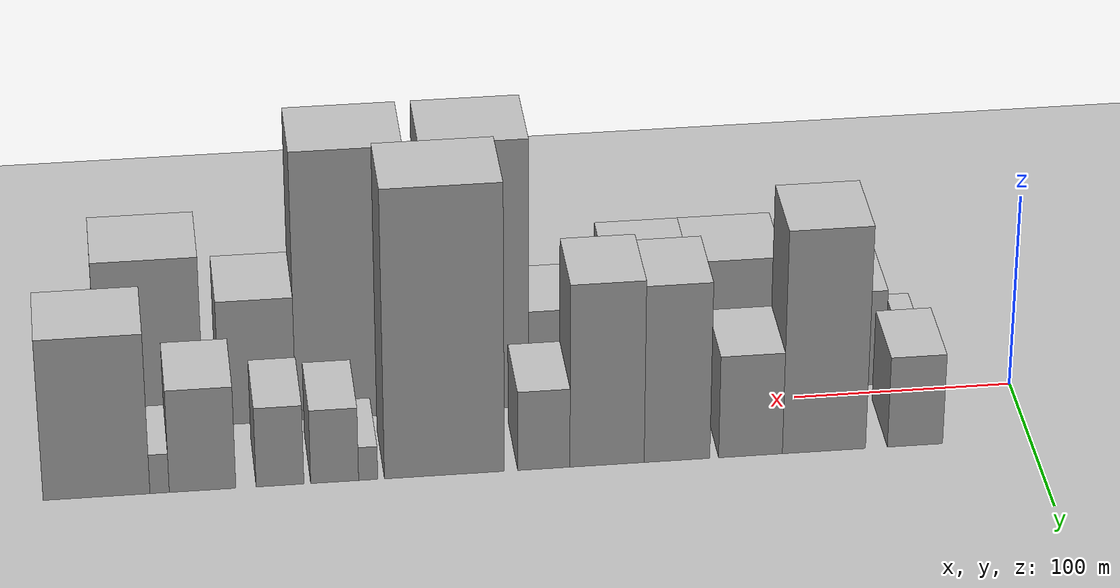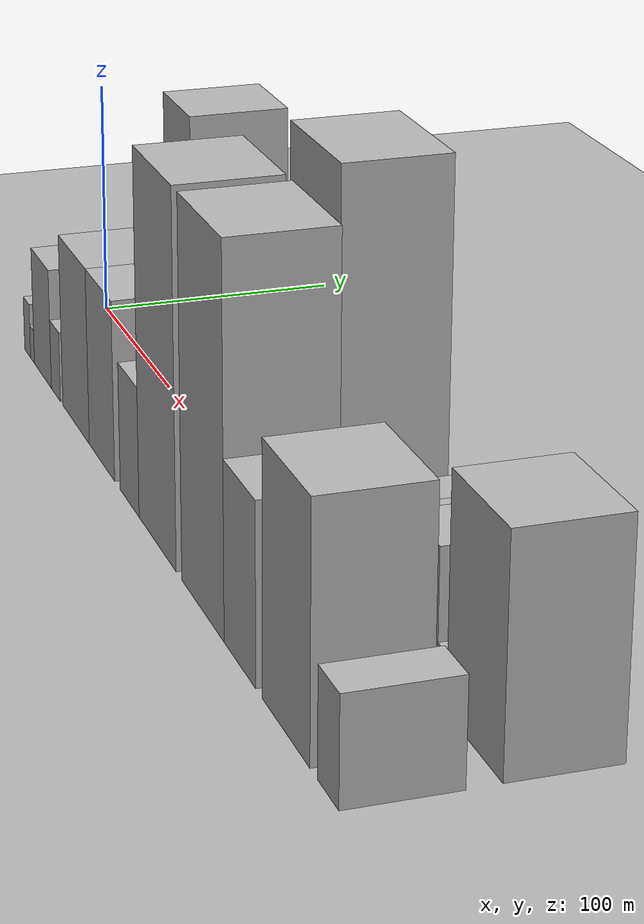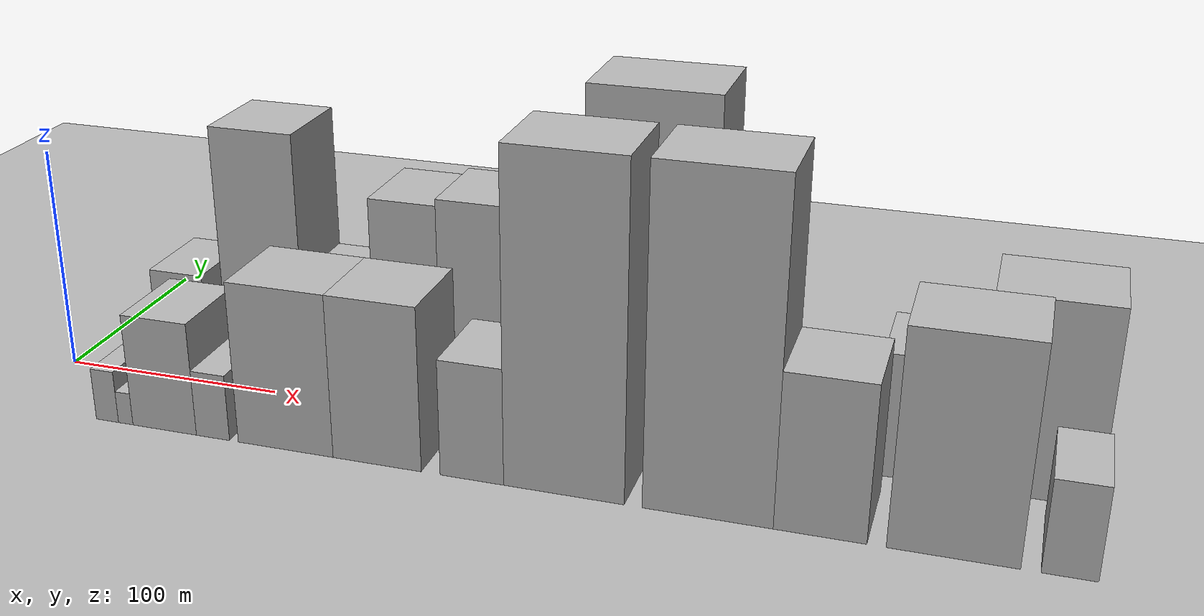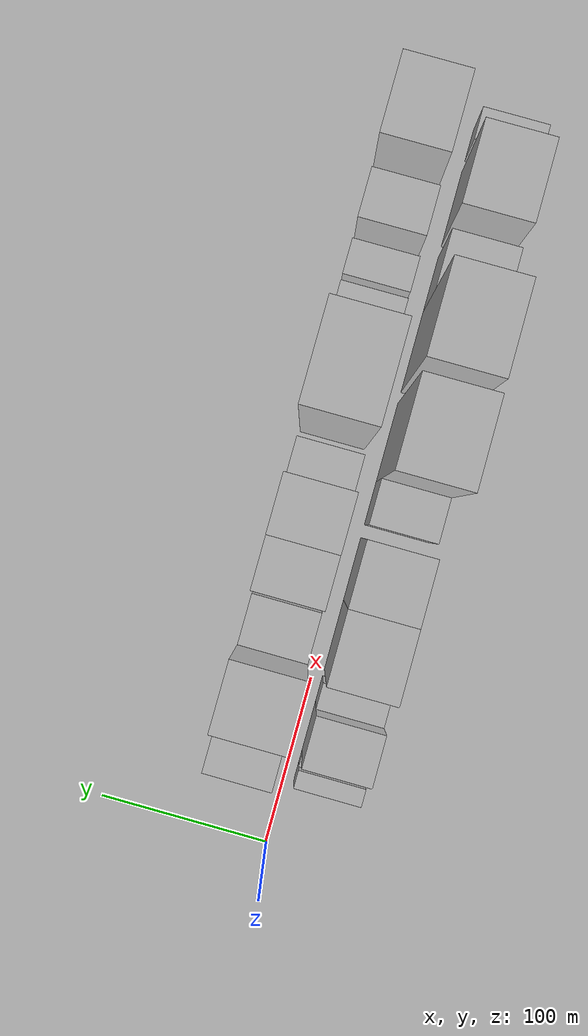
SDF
<?xml version="1.0" encoding="utf-8"?>

<sdf version="1.6">

   <world name="default">

      <gui fullscreen="0">

         <camera name="user_camera">

            <pose>-15 0 4.57585 0 0 0</pose>

            <view_controller>orbit</view_controller>

         </camera>

      </gui>

      <scene>

         <sky>

           <clouds>

             <speed>12</speed>

           </clouds>

         </sky>

         <ambient>0.4 0.4 0.4 1</ambient>

         <background>0.7 0.7 0.7 1</background>

         <shadows>1</shadows>

      </scene>

      <gravity>0 0 -9.8066</gravity>

      <magnetic_field>6e-06 2.3e-05 -4.2e-05</magnetic_field>

      <physics default="0" name="default_physics" type="ode">

         <ode>

            <solver>

               <type>quick</type>

               <iters>10</iters>

               <sor>1.0</sor>

               <use_dynamic_moi_rescaling>0</use_dynamic_moi_rescaling>

            </solver>

            <constraints>

               <cfm>0</cfm>

               <erp>0.2</erp>

               <contact_max_correcting_vel>100</contact_max_correcting_vel>

               <contact_surface_layer>0.001</contact_surface_layer>

            </constraints>

         </ode>

         <max_step_size>0.004</max_step_size>

         <real_time_factor>1</real_time_factor>

         <real_time_update_rate>250</real_time_update_rate>

      </physics>

      <light name="sun" type="directional">

         <cast_shadows>1</cast_shadows>

         <pose>0 0 10 0 0 0</pose>

         <diffuse>0.8 0.8 0.8 1</diffuse>

         <specular>0.2 0.2 0.2 1</specular>

         <attenuation>

            <range>1000</range>

            <constant>0.9</constant>

            <linear>0.01</linear>

            <quadratic>0.001</quadratic>

         </attenuation>

         <direction>-0.5 0.1 -0.9</direction>

      </light>

      <include>

         <name>ground_plane_1</name>

         <uri>model://HANNAS_ground_plane</uri>

         <pose>0 0 0  0 0 0</pose>

      </include>

      <include>

         <name>ground_plane_2</name>

         <uri>model://HANNAS_ground_plane</uri>

         <pose>100 0 0  0 0 0</pose>

      </include>

      <model name="building_1">

         <static>1</static>

         <pose frame="">52.6195 26.0000 0 0.000000 0.000000 1.570796</pose>

         <link name="link">

            <pose frame="">0 0 24.00 0 0 0</pose>

            <collision name="collision">

               <geometry>

                  <box>

                     <size>40.0000 25.2391 48.0000</size>

                  </box>

               </geometry>

               <max_contacts>10</max_contacts>

               <surface>

                  <contact>

                     <ode/>

                  </contact>

                  <bounce/>

                  <friction>

                     <torsional>

                        <ode/>

                     </torsional>

                     <ode/>

                  </friction>

               </surface>

            </collision>

            <visual name="visual">

               <cast_shadows>0</cast_shadows>

               <geometry>

                  <box>

                     <size>40.0000 25.2391 48.0000</size>

                  </box>

               </geometry>

               <material>

                  <script>

                     <uri>model://HANNAS_wall/materials/scripts</uri>

                     <uri>model://HANNAS_wall/materials/textures</uri>

                     <name>vrc/HANNAS_wall</name>

                  </script>

               </material>

            </visual>

            <self_collide>0</self_collide>

            <enable_wind>0</enable_wind>

            <kinematic>0</kinematic>

         </link>

      </model>

      <model name="building_2">

         <static>1</static>

         <pose frame="">94.1883 26.0000 0 0.000000 0.000000 1.570796</pose>

         <link name="link">

            <pose frame="">0 0 58.50 0 0 0</pose>

            <collision name="collision">

               <geometry>

                  <box>

                     <size>40.0000 37.8985 117.0000</size>

                  </box>

               </geometry>

               <max_contacts>10</max_contacts>

               <surface>

                  <contact>

                     <ode/>

                  </contact>

                  <bounce/>

                  <friction>

                     <torsional>

                        <ode/>

                     </torsional>

                     <ode/>

                  </friction>

               </surface>

            </collision>

            <visual name="visual">

               <cast_shadows>0</cast_shadows>

               <geometry>

                  <box>

                     <size>40.0000 37.8985 117.0000</size>

                  </box>

               </geometry>

               <material>

                  <script>

                     <uri>model://HANNAS_wall/materials/scripts</uri>

                     <uri>model://HANNAS_wall/materials/textures</uri>

                     <name>vrc/HANNAS_wall</name>

                  </script>

               </material>

            </visual>

            <self_collide>0</self_collide>

            <enable_wind>0</enable_wind>

            <kinematic>0</kinematic>

         </link>

      </model>

      <model name="building_3">

         <static>1</static>

         <pose frame="">127.6139 26.0000 0 0.000000 0.000000 1.570796</pose>

         <link name="link">

            <pose frame="">0 0 27.00 0 0 0</pose>

            <collision name="collision">

               <geometry>

                  <box>

                     <size>40.0000 28.9527 54.0000</size>

                  </box>

               </geometry>

               <max_contacts>10</max_contacts>

               <surface>

                  <contact>

                     <ode/>

                  </contact>

                  <bounce/>

                  <friction>

                     <torsional>

                        <ode/>

                     </torsional>

                     <ode/>

                  </friction>

               </surface>

            </collision>

            <visual name="visual">

               <cast_shadows>0</cast_shadows>

               <geometry>

                  <box>

                     <size>40.0000 28.9527 54.0000</size>

                  </box>

               </geometry>

               <material>

                  <script>

                     <uri>model://HANNAS_wall/materials/scripts</uri>

                     <uri>model://HANNAS_wall/materials/textures</uri>

                     <name>vrc/HANNAS_wall</name>

                  </script>

               </material>

            </visual>

            <self_collide>0</self_collide>

            <enable_wind>0</enable_wind>

            <kinematic>0</kinematic>

         </link>

      </model>

      <model name="building_4">

         <static>1</static>

         <pose frame="">160.9528 26.0000 0 0.000000 0.000000 1.570796</pose>

         <link name="link">

            <pose frame="">0 0 46.50 0 0 0</pose>

            <collision name="collision">

               <geometry>

                  <box>

                     <size>40.0000 29.7250 93.0000</size>

                  </box>

               </geometry>

               <max_contacts>10</max_contacts>

               <surface>

                  <contact>

                     <ode/>

                  </contact>

                  <bounce/>

                  <friction>

                     <torsional>

                        <ode/>

                     </torsional>

                     <ode/>

                  </friction>

               </surface>

            </collision>

            <visual name="visual">

               <cast_shadows>0</cast_shadows>

               <geometry>

                  <box>

                     <size>40.0000 29.7250 93.0000</size>

                  </box>

               </geometry>

               <material>

                  <script>

                     <uri>model://HANNAS_wall/materials/scripts</uri>

                     <uri>model://HANNAS_wall/materials/textures</uri>

                     <name>vrc/HANNAS_wall</name>

                  </script>

               </material>

            </visual>

            <self_collide>0</self_collide>

            <enable_wind>0</enable_wind>

            <kinematic>0</kinematic>

         </link>

      </model>

      <model name="building_5">

         <static>1</static>

         <pose frame="">192.5927 26.0000 0 0.000000 0.000000 1.570796</pose>

         <link name="link">

            <pose frame="">0 0 48.00 0 0 0</pose>

            <collision name="collision">

               <geometry>

                  <box>

                     <size>40.0000 33.5550 96.0000</size>

                  </box>

               </geometry>

               <max_contacts>10</max_contacts>

               <surface>

                  <contact>

                     <ode/>

                  </contact>

                  <bounce/>

                  <friction>

                     <torsional>

                        <ode/>

                     </torsional>

                     <ode/>

                  </friction>

               </surface>

            </collision>

            <visual name="visual">

               <cast_shadows>0</cast_shadows>

               <geometry>

                  <box>

                     <size>40.0000 33.5550 96.0000</size>

                  </box>

               </geometry>

               <material>

                  <script>

                     <uri>model://HANNAS_wall/materials/scripts</uri>

                     <uri>model://HANNAS_wall/materials/textures</uri>

                     <name>vrc/HANNAS_wall</name>

                  </script>

               </material>

            </visual>

            <self_collide>0</self_collide>

            <enable_wind>0</enable_wind>

            <kinematic>0</kinematic>

         </link>

      </model>

      <model name="building_6">

         <static>1</static>

         <pose frame="">221.1236 26.0000 0 0.000000 0.000000 1.570796</pose>

         <link name="link">

            <pose frame="">0 0 21.00 0 0 0</pose>

            <collision name="collision">

               <geometry>

                  <box>

                     <size>40.0000 23.5068 42.0000</size>

                  </box>

               </geometry>

               <max_contacts>10</max_contacts>

               <surface>

                  <contact>

                     <ode/>

                  </contact>

                  <bounce/>

                  <friction>

                     <torsional>

                        <ode/>

                     </torsional>

                     <ode/>

                  </friction>

               </surface>

            </collision>

            <visual name="visual">

               <cast_shadows>0</cast_shadows>

               <geometry>

                  <box>

                     <size>40.0000 23.5068 42.0000</size>

                  </box>

               </geometry>

               <material>

                  <script>

                     <uri>model://HANNAS_wall/materials/scripts</uri>

                     <uri>model://HANNAS_wall/materials/textures</uri>

                     <name>vrc/HANNAS_wall</name>

                  </script>

               </material>

            </visual>

            <self_collide>0</self_collide>

            <enable_wind>0</enable_wind>

            <kinematic>0</kinematic>

         </link>

      </model>

      <model name="building_7">

         <static>1</static>

         <pose frame="">265.7834 26.0000 0 0.000000 0.000000 1.570796</pose>

         <link name="link">

            <pose frame="">0 0 75.00 0 0 0</pose>

            <collision name="collision">

               <geometry>

                  <box>

                     <size>40.0000 53.8128 150.0000</size>

                  </box>

               </geometry>

               <max_contacts>10</max_contacts>

               <surface>

                  <contact>

                     <ode/>

                  </contact>

                  <bounce/>

                  <friction>

                     <torsional>

                        <ode/>

                     </torsional>

                     <ode/>

                  </friction>

               </surface>

            </collision>

            <visual name="visual">

               <cast_shadows>0</cast_shadows>

               <geometry>

                  <box>

                     <size>40.0000 53.8128 150.0000</size>

                  </box>

               </geometry>

               <material>

                  <script>

                     <uri>model://HANNAS_wall/materials/scripts</uri>

                     <uri>model://HANNAS_wall/materials/textures</uri>

                     <name>vrc/HANNAS_wall</name>

                  </script>

               </material>

            </visual>

            <self_collide>0</self_collide>

            <enable_wind>0</enable_wind>

            <kinematic>0</kinematic>

         </link>

      </model>

      <model name="building_8">

         <static>1</static>

         <pose frame="">299.9729 26.0000 0 0.000000 0.000000 1.570796</pose>

         <link name="link">

            <pose frame="">0 0 9.00 0 0 0</pose>

            <collision name="collision">

               <geometry>

                  <box>

                     <size>40.0000 8.5662 18.0000</size>

                  </box>

               </geometry>

               <max_contacts>10</max_contacts>

               <surface>

                  <contact>

                     <ode/>

                  </contact>

                  <bounce/>

                  <friction>

                     <torsional>

                        <ode/>

                     </torsional>

                     <ode/>

                  </friction>

               </surface>

            </collision>

            <visual name="visual">

               <cast_shadows>0</cast_shadows>

               <geometry>

                  <box>

                     <size>40.0000 8.5662 18.0000</size>

                  </box>

               </geometry>

               <material>

                  <script>

                     <uri>model://HANNAS_wall/materials/scripts</uri>

                     <uri>model://HANNAS_wall/materials/textures</uri>

                     <name>vrc/HANNAS_wall</name>

                  </script>

               </material>

            </visual>

            <self_collide>0</self_collide>

            <enable_wind>0</enable_wind>

            <kinematic>0</kinematic>

         </link>

      </model>

      <model name="building_9">

         <static>1</static>

         <pose frame="">314.9580 26.0000 0 0.000000 0.000000 1.570796</pose>

         <link name="link">

            <pose frame="">0 0 19.50 0 0 0</pose>

            <collision name="collision">

               <geometry>

                  <box>

                     <size>40.0000 21.4040 39.0000</size>

                  </box>

               </geometry>

               <max_contacts>10</max_contacts>

               <surface>

                  <contact>

                     <ode/>

                  </contact>

                  <bounce/>

                  <friction>

                     <torsional>

                        <ode/>

                     </torsional>

                     <ode/>

                  </friction>

               </surface>

            </collision>

            <visual name="visual">

               <cast_shadows>0</cast_shadows>

               <geometry>

                  <box>

                     <size>40.0000 21.4040 39.0000</size>

                  </box>

               </geometry>

               <material>

                  <script>

                     <uri>model://HANNAS_wall/materials/scripts</uri>

                     <uri>model://HANNAS_wall/materials/textures</uri>

                     <name>vrc/HANNAS_wall</name>

                  </script>

               </material>

            </visual>

            <self_collide>0</self_collide>

            <enable_wind>0</enable_wind>

            <kinematic>0</kinematic>

         </link>

      </model>

      <model name="building_10">

         <static>1</static>

         <pose frame="">339.3131 26.0000 0 0.000000 0.000000 1.570796</pose>

         <link name="link">

            <pose frame="">0 0 21.00 0 0 0</pose>

            <collision name="collision">

               <geometry>

                  <box>

                     <size>40.0000 21.3061 42.0000</size>

                  </box>

               </geometry>

               <max_contacts>10</max_contacts>

               <surface>

                  <contact>

                     <ode/>

                  </contact>

                  <bounce/>

                  <friction>

                     <torsional>

                        <ode/>

                     </torsional>

                     <ode/>

                  </friction>

               </surface>

            </collision>

            <visual name="visual">

               <cast_shadows>0</cast_shadows>

               <geometry>

                  <box>

                     <size>40.0000 21.3061 42.0000</size>

                  </box>

               </geometry>

               <material>

                  <script>

                     <uri>model://HANNAS_wall/materials/scripts</uri>

                     <uri>model://HANNAS_wall/materials/textures</uri>

                     <name>vrc/HANNAS_wall</name>

                  </script>

               </material>

            </visual>

            <self_collide>0</self_collide>

            <enable_wind>0</enable_wind>

            <kinematic>0</kinematic>

         </link>

      </model>

      <model name="building_11">

         <static>1</static>

         <pose frame="">373.7644 26.0000 0 0.000000 0.000000 1.570796</pose>

         <link name="link">

            <pose frame="">0 0 27.00 0 0 0</pose>

            <collision name="collision">

               <geometry>

                  <box>

                     <size>40.0000 29.5966 54.0000</size>

                  </box>

               </geometry>

               <max_contacts>10</max_contacts>

               <surface>

                  <contact>

                     <ode/>

                  </contact>

                  <bounce/>

                  <friction>

                     <torsional>

                        <ode/>

                     </torsional>

                     <ode/>

                  </friction>

               </surface>

            </collision>

            <visual name="visual">

               <cast_shadows>0</cast_shadows>

               <geometry>

                  <box>

                     <size>40.0000 29.5966 54.0000</size>

                  </box>

               </geometry>

               <material>

                  <script>

                     <uri>model://HANNAS_wall/materials/scripts</uri>

                     <uri>model://HANNAS_wall/materials/textures</uri>

                     <name>vrc/HANNAS_wall</name>

                  </script>

               </material>

            </visual>

            <self_collide>0</self_collide>

            <enable_wind>0</enable_wind>

            <kinematic>0</kinematic>

         </link>

      </model>

      <model name="building_12">

         <static>1</static>

         <pose frame="">392.8531 26.0000 0 0.000000 0.000000 1.570796</pose>

         <link name="link">

            <pose frame="">0 0 10.50 0 0 0</pose>

            <collision name="collision">

               <geometry>

                  <box>

                     <size>40.0000 8.5809 21.0000</size>

                  </box>

               </geometry>

               <max_contacts>10</max_contacts>

               <surface>

                  <contact>

                     <ode/>

                  </contact>

                  <bounce/>

                  <friction>

                     <torsional>

                        <ode/>

                     </torsional>

                     <ode/>

                  </friction>

               </surface>

            </collision>

            <visual name="visual">

               <cast_shadows>0</cast_shadows>

               <geometry>

                  <box>

                     <size>40.0000 8.5809 21.0000</size>

                  </box>

               </geometry>

               <material>

                  <script>

                     <uri>model://HANNAS_wall/materials/scripts</uri>

                     <uri>model://HANNAS_wall/materials/textures</uri>

                     <name>vrc/HANNAS_wall</name>

                  </script>

               </material>

            </visual>

            <self_collide>0</self_collide>

            <enable_wind>0</enable_wind>

            <kinematic>0</kinematic>

         </link>

      </model>

      <model name="building_13">

         <static>1</static>

         <pose frame="">420.7627 26.0000 0 0.000000 0.000000 1.570796</pose>

         <link name="link">

            <pose frame="">0 0 42.00 0 0 0</pose>

            <collision name="collision">

               <geometry>

                  <box>

                     <size>40.0000 47.2383 84.0000</size>

                  </box>

               </geometry>

               <max_contacts>10</max_contacts>

               <surface>

                  <contact>

                     <ode/>

                  </contact>

                  <bounce/>

                  <friction>

                     <torsional>

                        <ode/>

                     </torsional>

                     <ode/>

                  </friction>

               </surface>

            </collision>

            <visual name="visual">

               <cast_shadows>0</cast_shadows>

               <geometry>

                  <box>

                     <size>40.0000 47.2383 84.0000</size>

                  </box>

               </geometry>

               <material>

                  <script>

                     <uri>model://HANNAS_wall/materials/scripts</uri>

                     <uri>model://HANNAS_wall/materials/textures</uri>

                     <name>vrc/HANNAS_wall</name>

                  </script>

               </material>

            </visual>

            <self_collide>0</self_collide>

            <enable_wind>0</enable_wind>

            <kinematic>0</kinematic>

         </link>

      </model>

      <model name="building_14">

         <static>1</static>

         <pose frame="">45.2991 -26.0000 0 0.000000 0.000000 1.570796</pose>

         <link name="link">

            <pose frame="">0 0 12.00 0 0 0</pose>

            <collision name="collision">

               <geometry>

                  <box>

                     <size>40.0000 10.5982 24.0000</size>

                  </box>

               </geometry>

               <max_contacts>10</max_contacts>

               <surface>

                  <contact>

                     <ode/>

                  </contact>

                  <bounce/>

                  <friction>

                     <torsional>

                        <ode/>

                     </torsional>

                     <ode/>

                  </friction>

               </surface>

            </collision>

            <visual name="visual">

               <cast_shadows>0</cast_shadows>

               <geometry>

                  <box>

                     <size>40.0000 10.5982 24.0000</size>

                  </box>

               </geometry>

               <material>

                  <script>

                     <uri>model://HANNAS_wall/materials/scripts</uri>

                     <uri>model://HANNAS_wall/materials/textures</uri>

                     <name>vrc/HANNAS_wall</name>

                  </script>

               </material>

            </visual>

            <self_collide>0</self_collide>

            <enable_wind>0</enable_wind>

            <kinematic>0</kinematic>

         </link>

      </model>

      <model name="building_15">

         <static>1</static>

         <pose frame="">54.0402 -26.0000 0 0.000000 0.000000 1.570796</pose>

         <link name="link">

            <pose frame="">0 0 7.50 0 0 0</pose>

            <collision name="collision">

               <geometry>

                  <box>

                     <size>40.0000 6.8842 15.0000</size>

                  </box>

               </geometry>

               <max_contacts>10</max_contacts>

               <surface>

                  <contact>

                     <ode/>

                  </contact>

                  <bounce/>

                  <friction>

                     <torsional>

                        <ode/>

                     </torsional>

                     <ode/>

                  </friction>

               </surface>

            </collision>

            <visual name="visual">

               <cast_shadows>0</cast_shadows>

               <geometry>

                  <box>

                     <size>40.0000 6.8842 15.0000</size>

                  </box>

               </geometry>

               <material>

                  <script>

                     <uri>model://HANNAS_wall/materials/scripts</uri>

                     <uri>model://HANNAS_wall/materials/textures</uri>

                     <name>vrc/HANNAS_wall</name>

                  </script>

               </material>

            </visual>

            <self_collide>0</self_collide>

            <enable_wind>0</enable_wind>

            <kinematic>0</kinematic>

         </link>

      </model>

      <model name="building_16">

         <static>1</static>

         <pose frame="">72.4030 -26.0000 0 0.000000 0.000000 1.570796</pose>

         <link name="link">

            <pose frame="">0 0 25.50 0 0 0</pose>

            <collision name="collision">

               <geometry>

                  <box>

                     <size>40.0000 29.8413 51.0000</size>

                  </box>

               </geometry>

               <max_contacts>10</max_contacts>

               <surface>

                  <contact>

                     <ode/>

                  </contact>

                  <bounce/>

                  <friction>

                     <torsional>

                        <ode/>

                     </torsional>

                     <ode/>

                  </friction>

               </surface>

            </collision>

            <visual name="visual">

               <cast_shadows>0</cast_shadows>

               <geometry>

                  <box>

                     <size>40.0000 29.8413 51.0000</size>

                  </box>

               </geometry>

               <material>

                  <script>

                     <uri>model://HANNAS_wall/materials/scripts</uri>

                     <uri>model://HANNAS_wall/materials/textures</uri>

                     <name>vrc/HANNAS_wall</name>

                  </script>

               </material>

            </visual>

            <self_collide>0</self_collide>

            <enable_wind>0</enable_wind>

            <kinematic>0</kinematic>

         </link>

      </model>

      <model name="building_17">

         <static>1</static>

         <pose frame="">94.9716 -26.0000 0 0.000000 0.000000 1.570796</pose>

         <link name="link">

            <pose frame="">0 0 15.00 0 0 0</pose>

            <collision name="collision">

               <geometry>

                  <box>

                     <size>40.0000 15.2959 30.0000</size>

                  </box>

               </geometry>

               <max_contacts>10</max_contacts>

               <surface>

                  <contact>

                     <ode/>

                  </contact>

                  <bounce/>

                  <friction>

                     <torsional>

                        <ode/>

                     </torsional>

                     <ode/>

                  </friction>

               </surface>

            </collision>

            <visual name="visual">

               <cast_shadows>0</cast_shadows>

               <geometry>

                  <box>

                     <size>40.0000 15.2959 30.0000</size>

                  </box>

               </geometry>

               <material>

                  <script>

                     <uri>model://HANNAS_wall/materials/scripts</uri>

                     <uri>model://HANNAS_wall/materials/textures</uri>

                     <name>vrc/HANNAS_wall</name>

                  </script>

               </material>

            </visual>

            <self_collide>0</self_collide>

            <enable_wind>0</enable_wind>

            <kinematic>0</kinematic>

         </link>

      </model>

      <model name="building_18">

         <static>1</static>

         <pose frame="">127.9093 -26.0000 0 0.000000 0.000000 1.570796</pose>

         <link name="link">

            <pose frame="">0 0 36.00 0 0 0</pose>

            <collision name="collision">

               <geometry>

                  <box>

                     <size>40.0000 42.5796 72.0000</size>

                  </box>

               </geometry>

               <max_contacts>10</max_contacts>

               <surface>

                  <contact>

                     <ode/>

                  </contact>

                  <bounce/>

                  <friction>

                     <torsional>

                        <ode/>

                     </torsional>

                     <ode/>

                  </friction>

               </surface>

            </collision>

            <visual name="visual">

               <cast_shadows>0</cast_shadows>

               <geometry>

                  <box>

                     <size>40.0000 42.5796 72.0000</size>

                  </box>

               </geometry>

               <material>

                  <script>

                     <uri>model://HANNAS_wall/materials/scripts</uri>

                     <uri>model://HANNAS_wall/materials/textures</uri>

                     <name>vrc/HANNAS_wall</name>

                  </script>

               </material>

            </visual>

            <self_collide>0</self_collide>

            <enable_wind>0</enable_wind>

            <kinematic>0</kinematic>

         </link>

      </model>

      <model name="building_19">

         <static>1</static>

         <pose frame="">168.3287 -26.0000 0 0.000000 0.000000 1.570796</pose>

         <link name="link">

            <pose frame="">0 0 36.00 0 0 0</pose>

            <collision name="collision">

               <geometry>

                  <box>

                     <size>40.0000 38.2591 72.0000</size>

                  </box>

               </geometry>

               <max_contacts>10</max_contacts>

               <surface>

                  <contact>

                     <ode/>

                  </contact>

                  <bounce/>

                  <friction>

                     <torsional>

                        <ode/>

                     </torsional>

                     <ode/>

                  </friction>

               </surface>

            </collision>

            <visual name="visual">

               <cast_shadows>0</cast_shadows>

               <geometry>

                  <box>

                     <size>40.0000 38.2591 72.0000</size>

                  </box>

               </geometry>

               <material>

                  <script>

                     <uri>model://HANNAS_wall/materials/scripts</uri>

                     <uri>model://HANNAS_wall/materials/textures</uri>

                     <name>vrc/HANNAS_wall</name>

                  </script>

               </material>

            </visual>

            <self_collide>0</self_collide>

            <enable_wind>0</enable_wind>

            <kinematic>0</kinematic>

         </link>

      </model>

      <model name="building_20">

         <static>1</static>

         <pose frame="">208.7578 -26.0000 0 0.000000 0.000000 1.570796</pose>

         <link name="link">

            <pose frame="">0 0 25.50 0 0 0</pose>

            <collision name="collision">

               <geometry>

                  <box>

                     <size>40.0000 26.5992 51.0000</size>

                  </box>

               </geometry>

               <max_contacts>10</max_contacts>

               <surface>

                  <contact>

                     <ode/>

                  </contact>

                  <bounce/>

                  <friction>

                     <torsional>

                        <ode/>

                     </torsional>

                     <ode/>

                  </friction>

               </surface>

            </collision>

            <visual name="visual">

               <cast_shadows>0</cast_shadows>

               <geometry>

                  <box>

                     <size>40.0000 26.5992 51.0000</size>

                  </box>

               </geometry>

               <material>

                  <script>

                     <uri>model://HANNAS_wall/materials/scripts</uri>

                     <uri>model://HANNAS_wall/materials/textures</uri>

                     <name>vrc/HANNAS_wall</name>

                  </script>

               </material>

            </visual>

            <self_collide>0</self_collide>

            <enable_wind>0</enable_wind>

            <kinematic>0</kinematic>

         </link>

      </model>

      <model name="building_21">

         <static>1</static>

         <pose frame="">246.5236 -26.0000 0 0.000000 0.000000 1.570796</pose>

         <link name="link">

            <pose frame="">0 0 70.50 0 0 0</pose>

            <collision name="collision">

               <geometry>

                  <box>

                     <size>40.0000 48.9324 141.0000</size>

                  </box>

               </geometry>

               <max_contacts>10</max_contacts>

               <surface>

                  <contact>

                     <ode/>

                  </contact>

                  <bounce/>

                  <friction>

                     <torsional>

                        <ode/>

                     </torsional>

                     <ode/>

                  </friction>

               </surface>

            </collision>

            <visual name="visual">

               <cast_shadows>0</cast_shadows>

               <geometry>

                  <box>

                     <size>40.0000 48.9324 141.0000</size>

                  </box>

               </geometry>

               <material>

                  <script>

                     <uri>model://HANNAS_wall/materials/scripts</uri>

                     <uri>model://HANNAS_wall/materials/textures</uri>

                     <name>vrc/HANNAS_wall</name>

                  </script>

               </material>

            </visual>

            <self_collide>0</self_collide>

            <enable_wind>0</enable_wind>

            <kinematic>0</kinematic>

         </link>

      </model>

      <model name="building_22">

         <static>1</static>

         <pose frame="">303.2490 -26.0000 0 0.000000 0.000000 1.570796</pose>

         <link name="link">

            <pose frame="">0 0 70.50 0 0 0</pose>

            <collision name="collision">

               <geometry>

                  <box>

                     <size>40.0000 50.5183 141.0000</size>

                  </box>

               </geometry>

               <max_contacts>10</max_contacts>

               <surface>

                  <contact>

                     <ode/>

                  </contact>

                  <bounce/>

                  <friction>

                     <torsional>

                        <ode/>

                     </torsional>

                     <ode/>

                  </friction>

               </surface>

            </collision>

            <visual name="visual">

               <cast_shadows>0</cast_shadows>

               <geometry>

                  <box>

                     <size>40.0000 50.5183 141.0000</size>

                  </box>

               </geometry>

               <material>

                  <script>

                     <uri>model://HANNAS_wall/materials/scripts</uri>

                     <uri>model://HANNAS_wall/materials/textures</uri>

                     <name>vrc/HANNAS_wall</name>

                  </script>

               </material>

            </visual>

            <self_collide>0</self_collide>

            <enable_wind>0</enable_wind>

            <kinematic>0</kinematic>

         </link>

      </model>

      <model name="building_23">

         <static>1</static>

         <pose frame="">345.8810 -26.0000 0 0.000000 0.000000 1.570796</pose>

         <link name="link">

            <pose frame="">0 0 33.00 0 0 0</pose>

            <collision name="collision">

               <geometry>

                  <box>

                     <size>40.0000 34.7458 66.0000</size>

                  </box>

               </geometry>

               <max_contacts>10</max_contacts>

               <surface>

                  <contact>

                     <ode/>

                  </contact>

                  <bounce/>

                  <friction>

                     <torsional>

                        <ode/>

                     </torsional>

                     <ode/>

                  </friction>

               </surface>

            </collision>

            <visual name="visual">

               <cast_shadows>0</cast_shadows>

               <geometry>

                  <box>

                     <size>40.0000 34.7458 66.0000</size>

                  </box>

               </geometry>

               <material>

                  <script>

                     <uri>model://HANNAS_wall/materials/scripts</uri>

                     <uri>model://HANNAS_wall/materials/textures</uri>

                     <name>vrc/HANNAS_wall</name>

                  </script>

               </material>

            </visual>

            <self_collide>0</self_collide>

            <enable_wind>0</enable_wind>

            <kinematic>0</kinematic>

         </link>

      </model>

      <model name="building_24">

         <static>1</static>

         <pose frame="">394.0864 -26.0000 0 0.000000 0.000000 1.570796</pose>

         <link name="link">

            <pose frame="">0 0 45.00 0 0 0</pose>

            <collision name="collision">

               <geometry>

                  <box>

                     <size>40.0000 47.6649 90.0000</size>

                  </box>

               </geometry>

               <max_contacts>10</max_contacts>

               <surface>

                  <contact>

                     <ode/>

                  </contact>

                  <bounce/>

                  <friction>

                     <torsional>

                        <ode/>

                     </torsional>

                     <ode/>

                  </friction>

               </surface>

            </collision>

            <visual name="visual">

               <cast_shadows>0</cast_shadows>

               <geometry>

                  <box>

                     <size>40.0000 47.6649 90.0000</size>

                  </box>

               </geometry>

               <material>

                  <script>

                     <uri>model://HANNAS_wall/materials/scripts</uri>

                     <uri>model://HANNAS_wall/materials/textures</uri>

                     <name>vrc/HANNAS_wall</name>

                  </script>

               </material>

            </visual>

            <self_collide>0</self_collide>

            <enable_wind>0</enable_wind>

            <kinematic>0</kinematic>

         </link>

      </model>

      <model name="building_25">

         <static>1</static>

         <pose frame="">434.8067 -26.0000 0 0.000000 0.000000 1.570796</pose>

         <link name="link">

            <pose frame="">0 0 19.50 0 0 0</pose>

            <collision name="collision">

               <geometry>

                  <box>

                     <size>40.0000 19.7757 39.0000</size>

                  </box>

               </geometry>

               <max_contacts>10</max_contacts>

               <surface>

                  <contact>

                     <ode/>

                  </contact>

                  <bounce/>

                  <friction>

                     <torsional>

                        <ode/>

                     </torsional>

                     <ode/>

                  </friction>

               </surface>

            </collision>

            <visual name="visual">

               <cast_shadows>0</cast_shadows>

               <geometry>

                  <box>

                     <size>40.0000 19.7757 39.0000</size>

                  </box>

               </geometry>

               <material>

                  <script>

                     <uri>model://HANNAS_wall/materials/scripts</uri>

                     <uri>model://HANNAS_wall/materials/textures</uri>

                     <name>vrc/HANNAS_wall</name>

                  </script>

               </material>

            </visual>

            <self_collide>0</self_collide>

            <enable_wind>0</enable_wind>

            <kinematic>0</kinematic>

         </link>

      </model>

   </world>

</sdf>

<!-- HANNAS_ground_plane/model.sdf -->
<sdf version="1.4">
<model name="HANNAS_ground_plane">
  <static>true</static>
    <link name="link">
      <collision name="collision">
        <geometry>
          <plane>
            <normal>0 0 1</normal>
            <size>1000 1000</size>
          </plane>
        </geometry>
        <surface>
          <friction>
            <ode>
              <mu>100</mu>
              <mu2>50</mu2>
            </ode>
          </friction>
        </surface>
      </collision>
      <visual name="visual">
        <cast_shadows>false</cast_shadows>
        <geometry>
          <plane>
            <normal>0 0 1</normal>
            <size>1000 1000</size>
          </plane>
        </geometry>
        <material>
          <script>
            <uri>model://HANNAS_ground_plane/materials/scripts/HANNAS_ground_plane.material</uri>
	    <uri>model://HANNAS_ground_plane/materials/textures</uri>
            <name>HANNASGroundPlane/Image</name>
          </script>
        </material>
      </visual>
    </link>
  </model>
</sdf>
